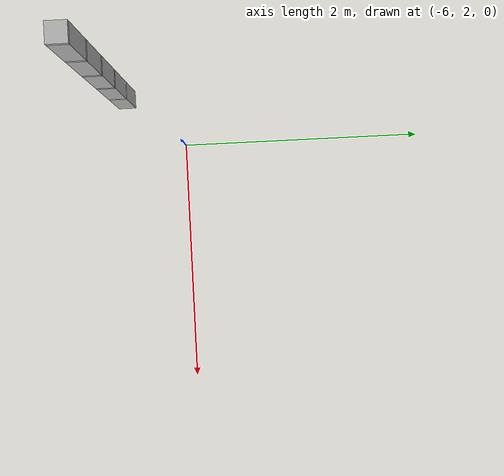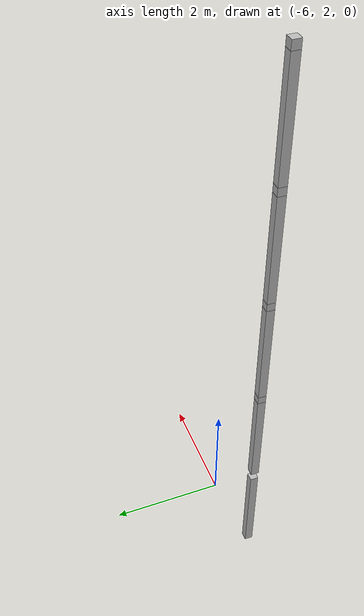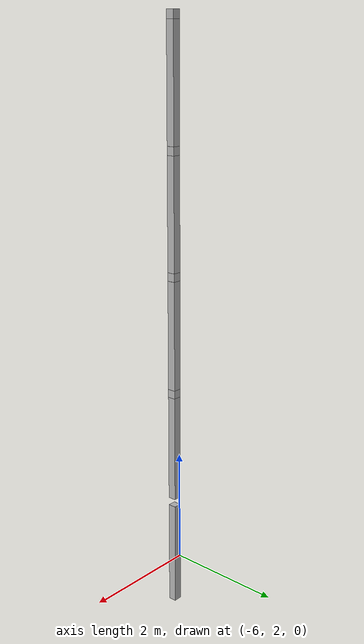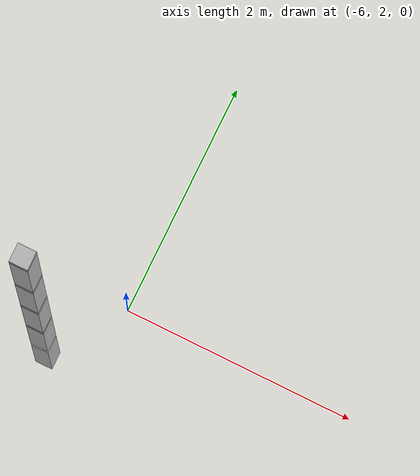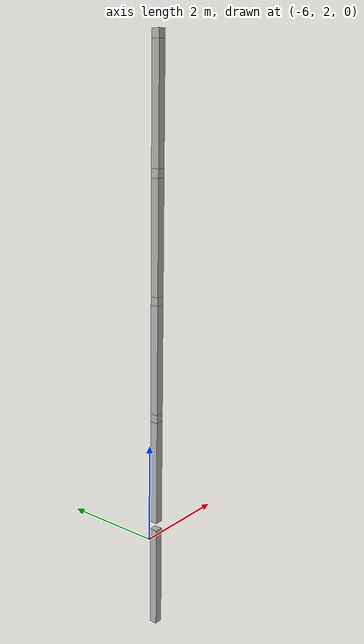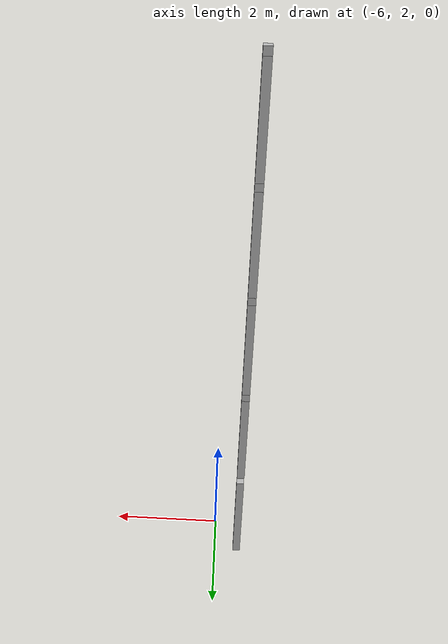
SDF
<sdf version="1.7">
 <world name="default">
  <model name="orthogonal_747_2.000.15_TS">
   <static>1</static>
   <link name="z_link_1_3_0">
    <inertial>
     <mass>1</mass>
     <inertia>
      <ixx>0.166667</ixx>
      <ixy>0</ixy>
      <ixz>0</ixz>
      <iyy>0.166667</iyy>
      <iyz>0</iyz>
      <izz>0.166667</izz>
     </inertia>
    </inertial>
    <pose>0 6.45 2.15 0 -0 0</pose>
    <visual name="visual_0">
     <laser_retro>1338</laser_retro>
     <geometry><box><size>0.15 1e-06 2</size></box></geometry>
     <material>
      <script><name>Gazebo/Grey</name><uri>file://media/materials/scripts/gazebo.material</uri></script>
      <shader type="pixel"><normal_map>__default__</normal_map></shader>
      <ambient>0.678 0.498 0.659 1</ambient>
      <diffuse>0.7 0.7 0.7 1</diffuse>
      <specular>0.01 0.01 0.01 1</specular>
      <emissive>0 0 0 1</emissive>
     </material>
     <pose>0 -0.075 0 0 -0 0</pose>
     <transparency>1</transparency>
    </visual>
    <visual name="visual_1">
     <laser_retro>1339</laser_retro>
     <geometry><box><size>0.15 1e-06 2</size></box></geometry>
     <material>
      <script><name>Gazebo/Grey</name><uri>file://media/materials/scripts/gazebo.material</uri></script>
      <shader type="pixel"><normal_map>__default__</normal_map></shader>
      <ambient>0.447 0.624 0.812 1</ambient>
      <diffuse>0.7 0.7 0.7 1</diffuse>
      <specular>0.01 0.01 0.01 1</specular>
      <emissive>0 0 0 1</emissive>
     </material>
     <pose>0 0.075 0 0 -0 0</pose>
     <transparency>1</transparency>
    </visual>
    <visual name="visual_2">
     <laser_retro>1340</laser_retro>
     <geometry><box><size>0.15 0.15 1e-06</size></box></geometry>
     <material>
      <script><name>Gazebo/Grey</name><uri>file://media/materials/scripts/gazebo.material</uri></script>
      <shader type="pixel"><normal_map>__default__</normal_map></shader>
      <ambient>0.988 0.686 0.243 1</ambient>
      <diffuse>0.7 0.7 0.7 1</diffuse>
      <specular>0.01 0.01 0.01 1</specular>
      <emissive>0 0 0 1</emissive>
     </material>
     <pose>0 0 -1 0 -0 0</pose>
     <transparency>1</transparency>
    </visual>
    <visual name="visual_3">
     <laser_retro>1341</laser_retro>
     <geometry><box><size>1e-06 0.15 2</size></box></geometry>
     <material>
      <script><name>Gazebo/Grey</name><uri>file://media/materials/scripts/gazebo.material</uri></script>
      <shader type="pixel"><normal_map>__default__</normal_map></shader>
      <ambient>0.988 0.914 0.31 1</ambient>
      <diffuse>0.7 0.7 0.7 1</diffuse>
      <specular>0.01 0.01 0.01 1</specular>
      <emissive>0 0 0 1</emissive>
     </material>
     <pose>0.075 0 0 0 -0 0</pose>
     <transparency>1</transparency>
    </visual>
    <visual name="visual_4">
     <laser_retro>1342</laser_retro>
     <geometry><box><size>0.15 0.15 1e-06</size></box></geometry>
     <material>
      <script><name>Gazebo/Grey</name><uri>file://media/materials/scripts/gazebo.material</uri></script>
      <shader type="pixel"><normal_map>__default__</normal_map></shader>
      <ambient>0.937 0.161 0.161 1</ambient>
      <diffuse>0.7 0.7 0.7 1</diffuse>
      <specular>0.01 0.01 0.01 1</specular>
      <emissive>0 0 0 1</emissive>
     </material>
     <pose>0 0 1 0 -0 0</pose>
     <transparency>1</transparency>
    </visual>
    <visual name="visual_5">
     <laser_retro>1343</laser_retro>
     <geometry><box><size>1e-06 0.15 2</size></box></geometry>
     <material>
      <script><name>Gazebo/Grey</name><uri>file://media/materials/scripts/gazebo.material</uri></script>
      <shader type="pixel"><normal_map>__default__</normal_map></shader>
      <ambient>0.541 0.886 0.204 1</ambient>
      <diffuse>0.7 0.7 0.7 1</diffuse>
      <specular>0.01 0.01 0.01 1</specular>
      <emissive>0 0 0 1</emissive>
     </material>
     <pose>-0.075 0 0 0 -0 0</pose>
     <transparency>1</transparency>
    </visual>
    <visual name="visual_texture">
     <geometry><box><size>0.149985 0.149985 1.9998</size></box></geometry>
     <material>
      <script>
       <uri>model://BASE_MODELS/simple_block_v2_textured/materials/scripts</uri>
       <uri>model://BASE_MODELS/simple_block_v2_textured/materials/textures</uri>
       <name>metal</name>
      </script>
     </material>
     <laser_retro>1344</laser_retro>
    </visual>
    <collision name="collision">
     <geometry><box><size>0.15 0.15 2</size></box></geometry>
     <surface>
      <friction>
       <ode><mu>1</mu><mu2>1</mu2><fdir1>0 0 0</fdir1><slip1>0</slip1><slip2>0</slip2></ode>
       <torsional>
        <coefficient>1</coefficient>
        <patch_radius>0</patch_radius>
        <surface_radius>0</surface_radius>
        <use_patch_radius>1</use_patch_radius>
        <ode><slip>0</slip></ode>
       </torsional>
      </friction>
      <bounce><restitution_coefficient>0</restitution_coefficient><threshold>1e+06</threshold></bounce>
      <contact>
       <collide_without_contact>0</collide_without_contact>
       <collide_without_contact_bitmask>1</collide_without_contact_bitmask>
       <collide_bitmask>1</collide_bitmask>
       <ode>
        <soft_cfm>0</soft_cfm>
        <soft_erp>0.2</soft_erp>
        <kp>1e+13</kp>
        <kd>1</kd>
        <max_vel>0.01</max_vel>
        <min_depth>0</min_depth>
       </ode>
       <bullet>
        <split_impulse>1</split_impulse>
        <split_impulse_penetration_threshold>-0.01</split_impulse_penetration_threshold>
        <soft_cfm>0</soft_cfm>
        <soft_erp>0.2</soft_erp>
        <kp>1e+13</kp>
        <kd>1</kd>
       </bullet>
      </contact>
     </surface>
    </collision>
   </link>
   <link name="u_link_2_3_0">
    <inertial>
     <mass>1</mass>
     <inertia>
      <ixx>0.166667</ixx>
      <ixy>0</ixy>
      <ixz>0</ixz>
      <iyy>0.166667</iyy>
      <iyz>0</iyz>
      <izz>0.166667</izz>
     </inertia>
    </inertial>
    <pose>0 6.45 5.375 0 -0 0</pose>
    <visual name="visual_0">
     <laser_retro>2234</laser_retro>
     <geometry><box><size>0.15 1e-06 0.15</size></box></geometry>
     <material>
      <script><name>Gazebo/Grey</name><uri>file://media/materials/scripts/gazebo.material</uri></script>
      <shader type="pixel"><normal_map>__default__</normal_map></shader>
      <ambient>0.678 0.498 0.659 1</ambient>
      <diffuse>0.7 0.7 0.7 1</diffuse>
      <specular>0.01 0.01 0.01 1</specular>
      <emissive>0 0 0 1</emissive>
     </material>
     <pose>0 -0.075 0 0 -0 0</pose>
     <transparency>1</transparency>
    </visual>
    <visual name="visual_1">
     <laser_retro>2235</laser_retro>
     <geometry><box><size>0.15 1e-06 0.15</size></box></geometry>
     <material>
      <script><name>Gazebo/Grey</name><uri>file://media/materials/scripts/gazebo.material</uri></script>
      <shader type="pixel"><normal_map>__default__</normal_map></shader>
      <ambient>0.447 0.624 0.812 1</ambient>
      <diffuse>0.7 0.7 0.7 1</diffuse>
      <specular>0.01 0.01 0.01 1</specular>
      <emissive>0 0 0 1</emissive>
     </material>
     <pose>0 0.075 0 0 -0 0</pose>
     <transparency>1</transparency>
    </visual>
    <visual name="visual_2">
     <laser_retro>2236</laser_retro>
     <geometry><box><size>0.15 0.15 1e-06</size></box></geometry>
     <material>
      <script><name>Gazebo/Grey</name><uri>file://media/materials/scripts/gazebo.material</uri></script>
      <shader type="pixel"><normal_map>__default__</normal_map></shader>
      <ambient>0.988 0.686 0.243 1</ambient>
      <diffuse>0.7 0.7 0.7 1</diffuse>
      <specular>0.01 0.01 0.01 1</specular>
      <emissive>0 0 0 1</emissive>
     </material>
     <pose>0 0 -0.075 0 -0 0</pose>
     <transparency>1</transparency>
    </visual>
    <visual name="visual_3">
     <laser_retro>2237</laser_retro>
     <geometry><box><size>1e-06 0.15 0.15</size></box></geometry>
     <material>
      <script><name>Gazebo/Grey</name><uri>file://media/materials/scripts/gazebo.material</uri></script>
      <shader type="pixel"><normal_map>__default__</normal_map></shader>
      <ambient>0.988 0.914 0.31 1</ambient>
      <diffuse>0.7 0.7 0.7 1</diffuse>
      <specular>0.01 0.01 0.01 1</specular>
      <emissive>0 0 0 1</emissive>
     </material>
     <pose>0.075 0 0 0 -0 0</pose>
     <transparency>1</transparency>
    </visual>
    <visual name="visual_4">
     <laser_retro>2238</laser_retro>
     <geometry><box><size>0.15 0.15 1e-06</size></box></geometry>
     <material>
      <script><name>Gazebo/Grey</name><uri>file://media/materials/scripts/gazebo.material</uri></script>
      <shader type="pixel"><normal_map>__default__</normal_map></shader>
      <ambient>0.937 0.161 0.161 1</ambient>
      <diffuse>0.7 0.7 0.7 1</diffuse>
      <specular>0.01 0.01 0.01 1</specular>
      <emissive>0 0 0 1</emissive>
     </material>
     <pose>0 0 0.075 0 -0 0</pose>
     <transparency>1</transparency>
    </visual>
    <visual name="visual_5">
     <laser_retro>2239</laser_retro>
     <geometry><box><size>1e-06 0.15 0.15</size></box></geometry>
     <material>
      <script><name>Gazebo/Grey</name><uri>file://media/materials/scripts/gazebo.material</uri></script>
      <shader type="pixel"><normal_map>__default__</normal_map></shader>
      <ambient>0.541 0.886 0.204 1</ambient>
      <diffuse>0.7 0.7 0.7 1</diffuse>
      <specular>0.01 0.01 0.01 1</specular>
      <emissive>0 0 0 1</emissive>
     </material>
     <pose>-0.075 0 0 0 -0 0</pose>
     <transparency>1</transparency>
    </visual>
    <visual name="visual_texture">
     <geometry><box><size>0.149985 0.149985 0.149985</size></box></geometry>
     <material>
      <script>
       <uri>model://BASE_MODELS/simple_block_v2_textured/materials/scripts</uri>
       <uri>model://BASE_MODELS/simple_block_v2_textured/materials/textures</uri>
       <name>metal</name>
      </script>
     </material>
     <laser_retro>2240</laser_retro>
    </visual>
    <collision name="collision">
     <geometry><box><size>0.15 0.15 0.15</size></box></geometry>
     <surface>
      <friction>
       <ode><mu>1</mu><mu2>1</mu2><fdir1>0 0 0</fdir1><slip1>0</slip1><slip2>0</slip2></ode>
       <torsional>
        <coefficient>1</coefficient>
        <patch_radius>0</patch_radius>
        <surface_radius>0</surface_radius>
        <use_patch_radius>1</use_patch_radius>
        <ode><slip>0</slip></ode>
       </torsional>
      </friction>
      <bounce><restitution_coefficient>0</restitution_coefficient><threshold>1e+06</threshold></bounce>
      <contact>
       <collide_without_contact>0</collide_without_contact>
       <collide_without_contact_bitmask>1</collide_without_contact_bitmask>
       <collide_bitmask>1</collide_bitmask>
       <ode>
        <soft_cfm>0</soft_cfm>
        <soft_erp>0.2</soft_erp>
        <kp>1e+13</kp>
        <kd>1</kd>
        <max_vel>0.01</max_vel>
        <min_depth>0</min_depth>
       </ode>
       <bullet>
        <split_impulse>1</split_impulse>
        <split_impulse_penetration_threshold>-0.01</split_impulse_penetration_threshold>
        <soft_cfm>0</soft_cfm>
        <soft_erp>0.2</soft_erp>
        <kp>1e+13</kp>
        <kd>1</kd>
       </bullet>
      </contact>
     </surface>
    </collision>
   </link>
   <link name="z_link_2_3_0">
    <inertial>
     <mass>1</mass>
     <inertia>
      <ixx>0.166667</ixx>
      <ixy>0</ixy>
      <ixz>0</ixz>
      <iyy>0.166667</iyy>
      <iyz>0</iyz>
      <izz>0.166667</izz>
     </inertia>
    </inertial>
    <pose>0 6.45 4.3 0 -0 0</pose>
    <visual name="visual_0">
     <laser_retro>2241</laser_retro>
     <geometry><box><size>0.15 1e-06 2</size></box></geometry>
     <material>
      <script><name>Gazebo/Grey</name><uri>file://media/materials/scripts/gazebo.material</uri></script>
      <shader type="pixel"><normal_map>__default__</normal_map></shader>
      <ambient>0.678 0.498 0.659 1</ambient>
      <diffuse>0.7 0.7 0.7 1</diffuse>
      <specular>0.01 0.01 0.01 1</specular>
      <emissive>0 0 0 1</emissive>
     </material>
     <pose>0 -0.075 0 0 -0 0</pose>
     <transparency>1</transparency>
    </visual>
    <visual name="visual_1">
     <laser_retro>2242</laser_retro>
     <geometry><box><size>0.15 1e-06 2</size></box></geometry>
     <material>
      <script><name>Gazebo/Grey</name><uri>file://media/materials/scripts/gazebo.material</uri></script>
      <shader type="pixel"><normal_map>__default__</normal_map></shader>
      <ambient>0.447 0.624 0.812 1</ambient>
      <diffuse>0.7 0.7 0.7 1</diffuse>
      <specular>0.01 0.01 0.01 1</specular>
      <emissive>0 0 0 1</emissive>
     </material>
     <pose>0 0.075 0 0 -0 0</pose>
     <transparency>1</transparency>
    </visual>
    <visual name="visual_2">
     <laser_retro>2243</laser_retro>
     <geometry><box><size>0.15 0.15 1e-06</size></box></geometry>
     <material>
      <script><name>Gazebo/Grey</name><uri>file://media/materials/scripts/gazebo.material</uri></script>
      <shader type="pixel"><normal_map>__default__</normal_map></shader>
      <ambient>0.988 0.686 0.243 1</ambient>
      <diffuse>0.7 0.7 0.7 1</diffuse>
      <specular>0.01 0.01 0.01 1</specular>
      <emissive>0 0 0 1</emissive>
     </material>
     <pose>0 0 -1 0 -0 0</pose>
     <transparency>1</transparency>
    </visual>
    <visual name="visual_3">
     <laser_retro>2244</laser_retro>
     <geometry><box><size>1e-06 0.15 2</size></box></geometry>
     <material>
      <script><name>Gazebo/Grey</name><uri>file://media/materials/scripts/gazebo.material</uri></script>
      <shader type="pixel"><normal_map>__default__</normal_map></shader>
      <ambient>0.988 0.914 0.31 1</ambient>
      <diffuse>0.7 0.7 0.7 1</diffuse>
      <specular>0.01 0.01 0.01 1</specular>
      <emissive>0 0 0 1</emissive>
     </material>
     <pose>0.075 0 0 0 -0 0</pose>
     <transparency>1</transparency>
    </visual>
    <visual name="visual_4">
     <laser_retro>2245</laser_retro>
     <geometry><box><size>0.15 0.15 1e-06</size></box></geometry>
     <material>
      <script><name>Gazebo/Grey</name><uri>file://media/materials/scripts/gazebo.material</uri></script>
      <shader type="pixel"><normal_map>__default__</normal_map></shader>
      <ambient>0.937 0.161 0.161 1</ambient>
      <diffuse>0.7 0.7 0.7 1</diffuse>
      <specular>0.01 0.01 0.01 1</specular>
      <emissive>0 0 0 1</emissive>
     </material>
     <pose>0 0 1 0 -0 0</pose>
     <transparency>1</transparency>
    </visual>
    <visual name="visual_5">
     <laser_retro>2246</laser_retro>
     <geometry><box><size>1e-06 0.15 2</size></box></geometry>
     <material>
      <script><name>Gazebo/Grey</name><uri>file://media/materials/scripts/gazebo.material</uri></script>
      <shader type="pixel"><normal_map>__default__</normal_map></shader>
      <ambient>0.541 0.886 0.204 1</ambient>
      <diffuse>0.7 0.7 0.7 1</diffuse>
      <specular>0.01 0.01 0.01 1</specular>
      <emissive>0 0 0 1</emissive>
     </material>
     <pose>-0.075 0 0 0 -0 0</pose>
     <transparency>1</transparency>
    </visual>
    <visual name="visual_texture">
     <geometry><box><size>0.149985 0.149985 1.9998</size></box></geometry>
     <material>
      <script>
       <uri>model://BASE_MODELS/simple_block_v2_textured/materials/scripts</uri>
       <uri>model://BASE_MODELS/simple_block_v2_textured/materials/textures</uri>
       <name>metal</name>
      </script>
     </material>
     <laser_retro>2247</laser_retro>
    </visual>
    <collision name="collision">
     <geometry><box><size>0.15 0.15 2</size></box></geometry>
     <surface>
      <friction>
       <ode><mu>1</mu><mu2>1</mu2><fdir1>0 0 0</fdir1><slip1>0</slip1><slip2>0</slip2></ode>
       <torsional>
        <coefficient>1</coefficient>
        <patch_radius>0</patch_radius>
        <surface_radius>0</surface_radius>
        <use_patch_radius>1</use_patch_radius>
        <ode><slip>0</slip></ode>
       </torsional>
      </friction>
      <bounce><restitution_coefficient>0</restitution_coefficient><threshold>1e+06</threshold></bounce>
      <contact>
       <collide_without_contact>0</collide_without_contact>
       <collide_without_contact_bitmask>1</collide_without_contact_bitmask>
       <collide_bitmask>1</collide_bitmask>
       <ode>
        <soft_cfm>0</soft_cfm>
        <soft_erp>0.2</soft_erp>
        <kp>1e+13</kp>
        <kd>1</kd>
        <max_vel>0.01</max_vel>
        <min_depth>0</min_depth>
       </ode>
       <bullet>
        <split_impulse>1</split_impulse>
        <split_impulse_penetration_threshold>-0.01</split_impulse_penetration_threshold>
        <soft_cfm>0</soft_cfm>
        <soft_erp>0.2</soft_erp>
        <kp>1e+13</kp>
        <kd>1</kd>
       </bullet>
      </contact>
     </surface>
    </collision>
   </link>
   <link name="u_link_3_3_0">
    <inertial>
     <mass>1</mass>
     <inertia>
      <ixx>0.166667</ixx>
      <ixy>0</ixy>
      <ixz>0</ixz>
      <iyy>0.166667</iyy>
      <iyz>0</iyz>
      <izz>0.166667</izz>
     </inertia>
    </inertial>
    <pose>0 6.45 7.525 0 -0 0</pose>
    <visual name="visual_0">
     <laser_retro>3137</laser_retro>
     <geometry><box><size>0.15 1e-06 0.15</size></box></geometry>
     <material>
      <script><name>Gazebo/Grey</name><uri>file://media/materials/scripts/gazebo.material</uri></script>
      <shader type="pixel"><normal_map>__default__</normal_map></shader>
      <ambient>0.678 0.498 0.659 1</ambient>
      <diffuse>0.7 0.7 0.7 1</diffuse>
      <specular>0.01 0.01 0.01 1</specular>
      <emissive>0 0 0 1</emissive>
     </material>
     <pose>0 -0.075 0 0 -0 0</pose>
     <transparency>1</transparency>
    </visual>
    <visual name="visual_1">
     <laser_retro>3138</laser_retro>
     <geometry><box><size>0.15 1e-06 0.15</size></box></geometry>
     <material>
      <script><name>Gazebo/Grey</name><uri>file://media/materials/scripts/gazebo.material</uri></script>
      <shader type="pixel"><normal_map>__default__</normal_map></shader>
      <ambient>0.447 0.624 0.812 1</ambient>
      <diffuse>0.7 0.7 0.7 1</diffuse>
      <specular>0.01 0.01 0.01 1</specular>
      <emissive>0 0 0 1</emissive>
     </material>
     <pose>0 0.075 0 0 -0 0</pose>
     <transparency>1</transparency>
    </visual>
    <visual name="visual_2">
     <laser_retro>3139</laser_retro>
     <geometry><box><size>0.15 0.15 1e-06</size></box></geometry>
     <material>
      <script><name>Gazebo/Grey</name><uri>file://media/materials/scripts/gazebo.material</uri></script>
      <shader type="pixel"><normal_map>__default__</normal_map></shader>
      <ambient>0.988 0.686 0.243 1</ambient>
      <diffuse>0.7 0.7 0.7 1</diffuse>
      <specular>0.01 0.01 0.01 1</specular>
      <emissive>0 0 0 1</emissive>
     </material>
     <pose>0 0 -0.075 0 -0 0</pose>
     <transparency>1</transparency>
    </visual>
    <visual name="visual_3">
     <laser_retro>3140</laser_retro>
     <geometry><box><size>1e-06 0.15 0.15</size></box></geometry>
     <material>
      <script><name>Gazebo/Grey</name><uri>file://media/materials/scripts/gazebo.material</uri></script>
      <shader type="pixel"><normal_map>__default__</normal_map></shader>
      <ambient>0.988 0.914 0.31 1</ambient>
      <diffuse>0.7 0.7 0.7 1</diffuse>
      <specular>0.01 0.01 0.01 1</specular>
      <emissive>0 0 0 1</emissive>
     </material>
     <pose>0.075 0 0 0 -0 0</pose>
     <transparency>1</transparency>
    </visual>
    <visual name="visual_4">
     <laser_retro>3141</laser_retro>
     <geometry><box><size>0.15 0.15 1e-06</size></box></geometry>
     <material>
      <script><name>Gazebo/Grey</name><uri>file://media/materials/scripts/gazebo.material</uri></script>
      <shader type="pixel"><normal_map>__default__</normal_map></shader>
      <ambient>0.937 0.161 0.161 1</ambient>
      <diffuse>0.7 0.7 0.7 1</diffuse>
      <specular>0.01 0.01 0.01 1</specular>
      <emissive>0 0 0 1</emissive>
     </material>
     <pose>0 0 0.075 0 -0 0</pose>
     <transparency>1</transparency>
    </visual>
    <visual name="visual_5">
     <laser_retro>3142</laser_retro>
     <geometry><box><size>1e-06 0.15 0.15</size></box></geometry>
     <material>
      <script><name>Gazebo/Grey</name><uri>file://media/materials/scripts/gazebo.material</uri></script>
      <shader type="pixel"><normal_map>__default__</normal_map></shader>
      <ambient>0.541 0.886 0.204 1</ambient>
      <diffuse>0.7 0.7 0.7 1</diffuse>
      <specular>0.01 0.01 0.01 1</specular>
      <emissive>0 0 0 1</emissive>
     </material>
     <pose>-0.075 0 0 0 -0 0</pose>
     <transparency>1</transparency>
    </visual>
    <visual name="visual_texture">
     <geometry><box><size>0.149985 0.149985 0.149985</size></box></geometry>
     <material>
      <script>
       <uri>model://BASE_MODELS/simple_block_v2_textured/materials/scripts</uri>
       <uri>model://BASE_MODELS/simple_block_v2_textured/materials/textures</uri>
       <name>metal</name>
      </script>
     </material>
     <laser_retro>3143</laser_retro>
    </visual>
    <collision name="collision">
     <geometry><box><size>0.15 0.15 0.15</size></box></geometry>
     <surface>
      <friction>
       <ode><mu>1</mu><mu2>1</mu2><fdir1>0 0 0</fdir1><slip1>0</slip1><slip2>0</slip2></ode>
       <torsional>
        <coefficient>1</coefficient>
        <patch_radius>0</patch_radius>
        <surface_radius>0</surface_radius>
        <use_patch_radius>1</use_patch_radius>
        <ode><slip>0</slip></ode>
       </torsional>
      </friction>
      <bounce><restitution_coefficient>0</restitution_coefficient><threshold>1e+06</threshold></bounce>
      <contact>
       <collide_without_contact>0</collide_without_contact>
       <collide_without_contact_bitmask>1</collide_without_contact_bitmask>
       <collide_bitmask>1</collide_bitmask>
       <ode>
        <soft_cfm>0</soft_cfm>
        <soft_erp>0.2</soft_erp>
        <kp>1e+13</kp>
        <kd>1</kd>
        <max_vel>0.01</max_vel>
        <min_depth>0</min_depth>
       </ode>
       <bullet>
        <split_impulse>1</split_impulse>
        <split_impulse_penetration_threshold>-0.01</split_impulse_penetration_threshold>
        <soft_cfm>0</soft_cfm>
        <soft_erp>0.2</soft_erp>
        <kp>1e+13</kp>
        <kd>1</kd>
       </bullet>
      </contact>
     </surface>
    </collision>
   </link>
   <link name="z_link_3_3_0">
    <inertial>
     <mass>1</mass>
     <inertia>
      <ixx>0.166667</ixx>
      <ixy>0</ixy>
      <ixz>0</ixz>
      <iyy>0.166667</iyy>
      <iyz>0</iyz>
      <izz>0.166667</izz>
     </inertia>
    </inertial>
    <pose>0 6.45 6.45 0 -0 0</pose>
    <visual name="visual_0">
     <laser_retro>3144</laser_retro>
     <geometry><box><size>0.15 1e-06 2</size></box></geometry>
     <material>
      <script><name>Gazebo/Grey</name><uri>file://media/materials/scripts/gazebo.material</uri></script>
      <shader type="pixel"><normal_map>__default__</normal_map></shader>
      <ambient>0.678 0.498 0.659 1</ambient>
      <diffuse>0.7 0.7 0.7 1</diffuse>
      <specular>0.01 0.01 0.01 1</specular>
      <emissive>0 0 0 1</emissive>
     </material>
     <pose>0 -0.075 0 0 -0 0</pose>
     <transparency>1</transparency>
    </visual>
    <visual name="visual_1">
     <laser_retro>3145</laser_retro>
     <geometry><box><size>0.15 1e-06 2</size></box></geometry>
     <material>
      <script><name>Gazebo/Grey</name><uri>file://media/materials/scripts/gazebo.material</uri></script>
      <shader type="pixel"><normal_map>__default__</normal_map></shader>
      <ambient>0.447 0.624 0.812 1</ambient>
      <diffuse>0.7 0.7 0.7 1</diffuse>
      <specular>0.01 0.01 0.01 1</specular>
      <emissive>0 0 0 1</emissive>
     </material>
     <pose>0 0.075 0 0 -0 0</pose>
     <transparency>1</transparency>
    </visual>
    <visual name="visual_2">
     <laser_retro>3146</laser_retro>
     <geometry><box><size>0.15 0.15 1e-06</size></box></geometry>
     <material>
      <script><name>Gazebo/Grey</name><uri>file://media/materials/scripts/gazebo.material</uri></script>
      <shader type="pixel"><normal_map>__default__</normal_map></shader>
      <ambient>0.988 0.686 0.243 1</ambient>
      <diffuse>0.7 0.7 0.7 1</diffuse>
      <specular>0.01 0.01 0.01 1</specular>
      <emissive>0 0 0 1</emissive>
     </material>
     <pose>0 0 -1 0 -0 0</pose>
     <transparency>1</transparency>
    </visual>
    <visual name="visual_3">
     <laser_retro>3147</laser_retro>
     <geometry><box><size>1e-06 0.15 2</size></box></geometry>
     <material>
      <script><name>Gazebo/Grey</name><uri>file://media/materials/scripts/gazebo.material</uri></script>
      <shader type="pixel"><normal_map>__default__</normal_map></shader>
      <ambient>0.988 0.914 0.31 1</ambient>
      <diffuse>0.7 0.7 0.7 1</diffuse>
      <specular>0.01 0.01 0.01 1</specular>
      <emissive>0 0 0 1</emissive>
     </material>
     <pose>0.075 0 0 0 -0 0</pose>
     <transparency>1</transparency>
    </visual>
    <visual name="visual_4">
     <laser_retro>3148</laser_retro>
     <geometry><box><size>0.15 0.15 1e-06</size></box></geometry>
     <material>
      <script><name>Gazebo/Grey</name><uri>file://media/materials/scripts/gazebo.material</uri></script>
      <shader type="pixel"><normal_map>__default__</normal_map></shader>
      <ambient>0.937 0.161 0.161 1</ambient>
      <diffuse>0.7 0.7 0.7 1</diffuse>
      <specular>0.01 0.01 0.01 1</specular>
      <emissive>0 0 0 1</emissive>
     </material>
     <pose>0 0 1 0 -0 0</pose>
     <transparency>1</transparency>
    </visual>
    <visual name="visual_5">
     <laser_retro>3149</laser_retro>
     <geometry><box><size>1e-06 0.15 2</size></box></geometry>
     <material>
      <script><name>Gazebo/Grey</name><uri>file://media/materials/scripts/gazebo.material</uri></script>
      <shader type="pixel"><normal_map>__default__</normal_map></shader>
      <ambient>0.541 0.886 0.204 1</ambient>
      <diffuse>0.7 0.7 0.7 1</diffuse>
      <specular>0.01 0.01 0.01 1</specular>
      <emissive>0 0 0 1</emissive>
     </material>
     <pose>-0.075 0 0 0 -0 0</pose>
     <transparency>1</transparency>
    </visual>
    <visual name="visual_texture">
     <geometry><box><size>0.149985 0.149985 1.9998</size></box></geometry>
     <material>
      <script>
       <uri>model://BASE_MODELS/simple_block_v2_textured/materials/scripts</uri>
       <uri>model://BASE_MODELS/simple_block_v2_textured/materials/textures</uri>
       <name>metal</name>
      </script>
     </material>
     <laser_retro>3150</laser_retro>
    </visual>
    <collision name="collision">
     <geometry><box><size>0.15 0.15 2</size></box></geometry>
     <surface>
      <friction>
       <ode><mu>1</mu><mu2>1</mu2><fdir1>0 0 0</fdir1><slip1>0</slip1><slip2>0</slip2></ode>
       <torsional>
        <coefficient>1</coefficient>
        <patch_radius>0</patch_radius>
        <surface_radius>0</surface_radius>
        <use_patch_radius>1</use_patch_radius>
        <ode><slip>0</slip></ode>
       </torsional>
      </friction>
      <bounce><restitution_coefficient>0</restitution_coefficient><threshold>1e+06</threshold></bounce>
      <contact>
       <collide_without_contact>0</collide_without_contact>
       <collide_without_contact_bitmask>1</collide_without_contact_bitmask>
       <collide_bitmask>1</collide_bitmask>
       <ode>
        <soft_cfm>0</soft_cfm>
        <soft_erp>0.2</soft_erp>
        <kp>1e+13</kp>
        <kd>1</kd>
        <max_vel>0.01</max_vel>
        <min_depth>0</min_depth>
       </ode>
       <bullet>
        <split_impulse>1</split_impulse>
        <split_impulse_penetration_threshold>-0.01</split_impulse_penetration_threshold>
        <soft_cfm>0</soft_cfm>
        <soft_erp>0.2</soft_erp>
        <kp>1e+13</kp>
        <kd>1</kd>
       </bullet>
      </contact>
     </surface>
    </collision>
   </link>
   <link name="u_link_4_3_0">
    <inertial>
     <mass>1</mass>
     <inertia>
      <ixx>0.166667</ixx>
      <ixy>0</ixy>
      <ixz>0</ixz>
      <iyy>0.166667</iyy>
      <iyz>0</iyz>
      <izz>0.166667</izz>
     </inertia>
    </inertial>
    <pose>0 6.45 9.675 0 -0 0</pose>
    <visual name="visual_0">
     <laser_retro>4040</laser_retro>
     <geometry><box><size>0.15 1e-06 0.15</size></box></geometry>
     <material>
      <script><name>Gazebo/Grey</name><uri>file://media/materials/scripts/gazebo.material</uri></script>
      <shader type="pixel"><normal_map>__default__</normal_map></shader>
      <ambient>0.678 0.498 0.659 1</ambient>
      <diffuse>0.7 0.7 0.7 1</diffuse>
      <specular>0.01 0.01 0.01 1</specular>
      <emissive>0 0 0 1</emissive>
     </material>
     <pose>0 -0.075 0 0 -0 0</pose>
     <transparency>1</transparency>
    </visual>
    <visual name="visual_1">
     <laser_retro>4041</laser_retro>
     <geometry><box><size>0.15 1e-06 0.15</size></box></geometry>
     <material>
      <script><name>Gazebo/Grey</name><uri>file://media/materials/scripts/gazebo.material</uri></script>
      <shader type="pixel"><normal_map>__default__</normal_map></shader>
      <ambient>0.447 0.624 0.812 1</ambient>
      <diffuse>0.7 0.7 0.7 1</diffuse>
      <specular>0.01 0.01 0.01 1</specular>
      <emissive>0 0 0 1</emissive>
     </material>
     <pose>0 0.075 0 0 -0 0</pose>
     <transparency>1</transparency>
    </visual>
    <visual name="visual_2">
     <laser_retro>4042</laser_retro>
     <geometry><box><size>0.15 0.15 1e-06</size></box></geometry>
     <material>
      <script><name>Gazebo/Grey</name><uri>file://media/materials/scripts/gazebo.material</uri></script>
      <shader type="pixel"><normal_map>__default__</normal_map></shader>
      <ambient>0.988 0.686 0.243 1</ambient>
      <diffuse>0.7 0.7 0.7 1</diffuse>
      <specular>0.01 0.01 0.01 1</specular>
      <emissive>0 0 0 1</emissive>
     </material>
     <pose>0 0 -0.075 0 -0 0</pose>
     <transparency>1</transparency>
    </visual>
    <visual name="visual_3">
     <laser_retro>4043</laser_retro>
     <geometry><box><size>1e-06 0.15 0.15</size></box></geometry>
     <material>
      <script><name>Gazebo/Grey</name><uri>file://media/materials/scripts/gazebo.material</uri></script>
      <shader type="pixel"><normal_map>__default__</normal_map></shader>
      <ambient>0.988 0.914 0.31 1</ambient>
      <diffuse>0.7 0.7 0.7 1</diffuse>
      <specular>0.01 0.01 0.01 1</specular>
      <emissive>0 0 0 1</emissive>
     </material>
     <pose>0.075 0 0 0 -0 0</pose>
     <transparency>1</transparency>
    </visual>
    <visual name="visual_4">
     <laser_retro>4044</laser_retro>
     <geometry><box><size>0.15 0.15 1e-06</size></box></geometry>
     <material>
      <script><name>Gazebo/Grey</name><uri>file://media/materials/scripts/gazebo.material</uri></script>
      <shader type="pixel"><normal_map>__default__</normal_map></shader>
      <ambient>0.937 0.161 0.161 1</ambient>
      <diffuse>0.7 0.7 0.7 1</diffuse>
      <specular>0.01 0.01 0.01 1</specular>
      <emissive>0 0 0 1</emissive>
     </material>
     <pose>0 0 0.075 0 -0 0</pose>
     <transparency>1</transparency>
    </visual>
    <visual name="visual_5">
     <laser_retro>4045</laser_retro>
     <geometry><box><size>1e-06 0.15 0.15</size></box></geometry>
     <material>
      <script><name>Gazebo/Grey</name><uri>file://media/materials/scripts/gazebo.material</uri></script>
      <shader type="pixel"><normal_map>__default__</normal_map></shader>
      <ambient>0.541 0.886 0.204 1</ambient>
      <diffuse>0.7 0.7 0.7 1</diffuse>
      <specular>0.01 0.01 0.01 1</specular>
      <emissive>0 0 0 1</emissive>
     </material>
     <pose>-0.075 0 0 0 -0 0</pose>
     <transparency>1</transparency>
    </visual>
    <visual name="visual_texture">
     <geometry><box><size>0.149985 0.149985 0.149985</size></box></geometry>
     <material>
      <script>
       <uri>model://BASE_MODELS/simple_block_v2_textured/materials/scripts</uri>
       <uri>model://BASE_MODELS/simple_block_v2_textured/materials/textures</uri>
       <name>metal</name>
      </script>
     </material>
     <laser_retro>4046</laser_retro>
    </visual>
    <collision name="collision">
     <geometry><box><size>0.15 0.15 0.15</size></box></geometry>
     <surface>
      <friction>
       <ode><mu>1</mu><mu2>1</mu2><fdir1>0 0 0</fdir1><slip1>0</slip1><slip2>0</slip2></ode>
       <torsional>
        <coefficient>1</coefficient>
        <patch_radius>0</patch_radius>
        <surface_radius>0</surface_radius>
        <use_patch_radius>1</use_patch_radius>
        <ode><slip>0</slip></ode>
       </torsional>
      </friction>
      <bounce><restitution_coefficient>0</restitution_coefficient><threshold>1e+06</threshold></bounce>
      <contact>
       <collide_without_contact>0</collide_without_contact>
       <collide_without_contact_bitmask>1</collide_without_contact_bitmask>
       <collide_bitmask>1</collide_bitmask>
       <ode>
        <soft_cfm>0</soft_cfm>
        <soft_erp>0.2</soft_erp>
        <kp>1e+13</kp>
        <kd>1</kd>
        <max_vel>0.01</max_vel>
        <min_depth>0</min_depth>
       </ode>
       <bullet>
        <split_impulse>1</split_impulse>
        <split_impulse_penetration_threshold>-0.01</split_impulse_penetration_threshold>
        <soft_cfm>0</soft_cfm>
        <soft_erp>0.2</soft_erp>
        <kp>1e+13</kp>
        <kd>1</kd>
       </bullet>
      </contact>
     </surface>
    </collision>
   </link>
   <link name="z_link_4_3_0">
    <inertial>
     <mass>1</mass>
     <inertia>
      <ixx>0.166667</ixx>
      <ixy>0</ixy>
      <ixz>0</ixz>
      <iyy>0.166667</iyy>
      <iyz>0</iyz>
      <izz>0.166667</izz>
     </inertia>
    </inertial>
    <pose>0 6.45 8.6 0 -0 0</pose>
    <visual name="visual_0">
     <laser_retro>4047</laser_retro>
     <geometry><box><size>0.15 1e-06 2</size></box></geometry>
     <material>
      <script><name>Gazebo/Grey</name><uri>file://media/materials/scripts/gazebo.material</uri></script>
      <shader type="pixel"><normal_map>__default__</normal_map></shader>
      <ambient>0.678 0.498 0.659 1</ambient>
      <diffuse>0.7 0.7 0.7 1</diffuse>
      <specular>0.01 0.01 0.01 1</specular>
      <emissive>0 0 0 1</emissive>
     </material>
     <pose>0 -0.075 0 0 -0 0</pose>
     <transparency>1</transparency>
    </visual>
    <visual name="visual_1">
     <laser_retro>4048</laser_retro>
     <geometry><box><size>0.15 1e-06 2</size></box></geometry>
     <material>
      <script><name>Gazebo/Grey</name><uri>file://media/materials/scripts/gazebo.material</uri></script>
      <shader type="pixel"><normal_map>__default__</normal_map></shader>
      <ambient>0.447 0.624 0.812 1</ambient>
      <diffuse>0.7 0.7 0.7 1</diffuse>
      <specular>0.01 0.01 0.01 1</specular>
      <emissive>0 0 0 1</emissive>
     </material>
     <pose>0 0.075 0 0 -0 0</pose>
     <transparency>1</transparency>
    </visual>
    <visual name="visual_2">
     <laser_retro>4049</laser_retro>
     <geometry><box><size>0.15 0.15 1e-06</size></box></geometry>
     <material>
      <script><name>Gazebo/Grey</name><uri>file://media/materials/scripts/gazebo.material</uri></script>
      <shader type="pixel"><normal_map>__default__</normal_map></shader>
      <ambient>0.988 0.686 0.243 1</ambient>
      <diffuse>0.7 0.7 0.7 1</diffuse>
      <specular>0.01 0.01 0.01 1</specular>
      <emissive>0 0 0 1</emissive>
     </material>
     <pose>0 0 -1 0 -0 0</pose>
     <transparency>1</transparency>
    </visual>
    <visual name="visual_3">
     <laser_retro>4050</laser_retro>
     <geometry><box><size>1e-06 0.15 2</size></box></geometry>
     <material>
      <script><name>Gazebo/Grey</name><uri>file://media/materials/scripts/gazebo.material</uri></script>
      <shader type="pixel"><normal_map>__default__</normal_map></shader>
      <ambient>0.988 0.914 0.31 1</ambient>
      <diffuse>0.7 0.7 0.7 1</diffuse>
      <specular>0.01 0.01 0.01 1</specular>
      <emissive>0 0 0 1</emissive>
     </material>
     <pose>0.075 0 0 0 -0 0</pose>
     <transparency>1</transparency>
    </visual>
    <visual name="visual_4">
     <laser_retro>4051</laser_retro>
     <geometry><box><size>0.15 0.15 1e-06</size></box></geometry>
     <material>
      <script><name>Gazebo/Grey</name><uri>file://media/materials/scripts/gazebo.material</uri></script>
      <shader type="pixel"><normal_map>__default__</normal_map></shader>
      <ambient>0.937 0.161 0.161 1</ambient>
      <diffuse>0.7 0.7 0.7 1</diffuse>
      <specular>0.01 0.01 0.01 1</specular>
      <emissive>0 0 0 1</emissive>
     </material>
     <pose>0 0 1 0 -0 0</pose>
     <transparency>1</transparency>
    </visual>
    <visual name="visual_5">
     <laser_retro>4052</laser_retro>
     <geometry><box><size>1e-06 0.15 2</size></box></geometry>
     <material>
      <script><name>Gazebo/Grey</name><uri>file://media/materials/scripts/gazebo.material</uri></script>
      <shader type="pixel"><normal_map>__default__</normal_map></shader>
      <ambient>0.541 0.886 0.204 1</ambient>
      <diffuse>0.7 0.7 0.7 1</diffuse>
      <specular>0.01 0.01 0.01 1</specular>
      <emissive>0 0 0 1</emissive>
     </material>
     <pose>-0.075 0 0 0 -0 0</pose>
     <transparency>1</transparency>
    </visual>
    <visual name="visual_texture">
     <geometry><box><size>0.149985 0.149985 1.9998</size></box></geometry>
     <material>
      <script>
       <uri>model://BASE_MODELS/simple_block_v2_textured/materials/scripts</uri>
       <uri>model://BASE_MODELS/simple_block_v2_textured/materials/textures</uri>
       <name>metal</name>
      </script>
     </material>
     <laser_retro>4053</laser_retro>
    </visual>
    <collision name="collision">
     <geometry><box><size>0.15 0.15 2</size></box></geometry>
     <surface>
      <friction>
       <ode><mu>1</mu><mu2>1</mu2><fdir1>0 0 0</fdir1><slip1>0</slip1><slip2>0</slip2></ode>
       <torsional>
        <coefficient>1</coefficient>
        <patch_radius>0</patch_radius>
        <surface_radius>0</surface_radius>
        <use_patch_radius>1</use_patch_radius>
        <ode><slip>0</slip></ode>
       </torsional>
      </friction>
      <bounce><restitution_coefficient>0</restitution_coefficient><threshold>1e+06</threshold></bounce>
      <contact>
       <collide_without_contact>0</collide_without_contact>
       <collide_without_contact_bitmask>1</collide_without_contact_bitmask>
       <collide_bitmask>1</collide_bitmask>
       <ode>
        <soft_cfm>0</soft_cfm>
        <soft_erp>0.2</soft_erp>
        <kp>1e+13</kp>
        <kd>1</kd>
        <max_vel>0.01</max_vel>
        <min_depth>0</min_depth>
       </ode>
       <bullet>
        <split_impulse>1</split_impulse>
        <split_impulse_penetration_threshold>-0.01</split_impulse_penetration_threshold>
        <soft_cfm>0</soft_cfm>
        <soft_erp>0.2</soft_erp>
        <kp>1e+13</kp>
        <kd>1</kd>
       </bullet>
      </contact>
     </surface>
    </collision>
   </link>
   <link name="u_link_5_3_0">
    <inertial>
     <mass>1</mass>
     <inertia>
      <ixx>0.166667</ixx>
      <ixy>0</ixy>
      <ixz>0</ixz>
      <iyy>0.166667</iyy>
      <iyz>0</iyz>
      <izz>0.166667</izz>
     </inertia>
    </inertial>
    <pose>0 6.45 11.825 0 -0 0</pose>
    <visual name="visual_0">
     <laser_retro>4943</laser_retro>
     <geometry><box><size>0.15 1e-06 0.15</size></box></geometry>
     <material>
      <script><name>Gazebo/Grey</name><uri>file://media/materials/scripts/gazebo.material</uri></script>
      <shader type="pixel"><normal_map>__default__</normal_map></shader>
      <ambient>0.678 0.498 0.659 1</ambient>
      <diffuse>0.7 0.7 0.7 1</diffuse>
      <specular>0.01 0.01 0.01 1</specular>
      <emissive>0 0 0 1</emissive>
     </material>
     <pose>0 -0.075 0 0 -0 0</pose>
     <transparency>1</transparency>
    </visual>
    <visual name="visual_1">
     <laser_retro>4944</laser_retro>
     <geometry><box><size>0.15 1e-06 0.15</size></box></geometry>
     <material>
      <script><name>Gazebo/Grey</name><uri>file://media/materials/scripts/gazebo.material</uri></script>
      <shader type="pixel"><normal_map>__default__</normal_map></shader>
      <ambient>0.447 0.624 0.812 1</ambient>
      <diffuse>0.7 0.7 0.7 1</diffuse>
      <specular>0.01 0.01 0.01 1</specular>
      <emissive>0 0 0 1</emissive>
     </material>
     <pose>0 0.075 0 0 -0 0</pose>
     <transparency>1</transparency>
    </visual>
    <visual name="visual_2">
     <laser_retro>4945</laser_retro>
     <geometry><box><size>0.15 0.15 1e-06</size></box></geometry>
     <material>
      <script><name>Gazebo/Grey</name><uri>file://media/materials/scripts/gazebo.material</uri></script>
      <shader type="pixel"><normal_map>__default__</normal_map></shader>
      <ambient>0.988 0.686 0.243 1</ambient>
      <diffuse>0.7 0.7 0.7 1</diffuse>
      <specular>0.01 0.01 0.01 1</specular>
      <emissive>0 0 0 1</emissive>
     </material>
     <pose>0 0 -0.075 0 -0 0</pose>
     <transparency>1</transparency>
    </visual>
    <visual name="visual_3">
     <laser_retro>4946</laser_retro>
     <geometry><box><size>1e-06 0.15 0.15</size></box></geometry>
     <material>
      <script><name>Gazebo/Grey</name><uri>file://media/materials/scripts/gazebo.material</uri></script>
      <shader type="pixel"><normal_map>__default__</normal_map></shader>
      <ambient>0.988 0.914 0.31 1</ambient>
      <diffuse>0.7 0.7 0.7 1</diffuse>
      <specular>0.01 0.01 0.01 1</specular>
      <emissive>0 0 0 1</emissive>
     </material>
     <pose>0.075 0 0 0 -0 0</pose>
     <transparency>1</transparency>
    </visual>
    <visual name="visual_4">
     <laser_retro>4947</laser_retro>
     <geometry><box><size>0.15 0.15 1e-06</size></box></geometry>
     <material>
      <script><name>Gazebo/Grey</name><uri>file://media/materials/scripts/gazebo.material</uri></script>
      <shader type="pixel"><normal_map>__default__</normal_map></shader>
      <ambient>0.937 0.161 0.161 1</ambient>
      <diffuse>0.7 0.7 0.7 1</diffuse>
      <specular>0.01 0.01 0.01 1</specular>
      <emissive>0 0 0 1</emissive>
     </material>
     <pose>0 0 0.075 0 -0 0</pose>
     <transparency>1</transparency>
    </visual>
    <visual name="visual_5">
     <laser_retro>4948</laser_retro>
     <geometry><box><size>1e-06 0.15 0.15</size></box></geometry>
     <material>
      <script><name>Gazebo/Grey</name><uri>file://media/materials/scripts/gazebo.material</uri></script>
      <shader type="pixel"><normal_map>__default__</normal_map></shader>
      <ambient>0.541 0.886 0.204 1</ambient>
      <diffuse>0.7 0.7 0.7 1</diffuse>
      <specular>0.01 0.01 0.01 1</specular>
      <emissive>0 0 0 1</emissive>
     </material>
     <pose>-0.075 0 0 0 -0 0</pose>
     <transparency>1</transparency>
    </visual>
    <visual name="visual_texture">
     <geometry><box><size>0.149985 0.149985 0.149985</size></box></geometry>
     <material>
      <script>
       <uri>model://BASE_MODELS/simple_block_v2_textured/materials/scripts</uri>
       <uri>model://BASE_MODELS/simple_block_v2_textured/materials/textures</uri>
       <name>metal</name>
      </script>
     </material>
     <laser_retro>4949</laser_retro>
    </visual>
    <collision name="collision">
     <geometry><box><size>0.15 0.15 0.15</size></box></geometry>
     <surface>
      <friction>
       <ode><mu>1</mu><mu2>1</mu2><fdir1>0 0 0</fdir1><slip1>0</slip1><slip2>0</slip2></ode>
       <torsional>
        <coefficient>1</coefficient>
        <patch_radius>0</patch_radius>
        <surface_radius>0</surface_radius>
        <use_patch_radius>1</use_patch_radius>
        <ode><slip>0</slip></ode>
       </torsional>
      </friction>
      <bounce><restitution_coefficient>0</restitution_coefficient><threshold>1e+06</threshold></bounce>
      <contact>
       <collide_without_contact>0</collide_without_contact>
       <collide_without_contact_bitmask>1</collide_without_contact_bitmask>
       <collide_bitmask>1</collide_bitmask>
       <ode>
        <soft_cfm>0</soft_cfm>
        <soft_erp>0.2</soft_erp>
        <kp>1e+13</kp>
        <kd>1</kd>
        <max_vel>0.01</max_vel>
        <min_depth>0</min_depth>
       </ode>
       <bullet>
        <split_impulse>1</split_impulse>
        <split_impulse_penetration_threshold>-0.01</split_impulse_penetration_threshold>
        <soft_cfm>0</soft_cfm>
        <soft_erp>0.2</soft_erp>
        <kp>1e+13</kp>
        <kd>1</kd>
       </bullet>
      </contact>
     </surface>
    </collision>
   </link>
   <link name="z_link_5_3_0">
    <inertial>
     <mass>1</mass>
     <inertia>
      <ixx>0.166667</ixx>
      <ixy>0</ixy>
      <ixz>0</ixz>
      <iyy>0.166667</iyy>
      <iyz>0</iyz>
      <izz>0.166667</izz>
     </inertia>
    </inertial>
    <pose>0 6.45 10.75 0 -0 0</pose>
    <visual name="visual_0">
     <laser_retro>4950</laser_retro>
     <geometry><box><size>0.15 1e-06 2</size></box></geometry>
     <material>
      <script><name>Gazebo/Grey</name><uri>file://media/materials/scripts/gazebo.material</uri></script>
      <shader type="pixel"><normal_map>__default__</normal_map></shader>
      <ambient>0.678 0.498 0.659 1</ambient>
      <diffuse>0.7 0.7 0.7 1</diffuse>
      <specular>0.01 0.01 0.01 1</specular>
      <emissive>0 0 0 1</emissive>
     </material>
     <pose>0 -0.075 0 0 -0 0</pose>
     <transparency>1</transparency>
    </visual>
    <visual name="visual_1">
     <laser_retro>4951</laser_retro>
     <geometry><box><size>0.15 1e-06 2</size></box></geometry>
     <material>
      <script><name>Gazebo/Grey</name><uri>file://media/materials/scripts/gazebo.material</uri></script>
      <shader type="pixel"><normal_map>__default__</normal_map></shader>
      <ambient>0.447 0.624 0.812 1</ambient>
      <diffuse>0.7 0.7 0.7 1</diffuse>
      <specular>0.01 0.01 0.01 1</specular>
      <emissive>0 0 0 1</emissive>
     </material>
     <pose>0 0.075 0 0 -0 0</pose>
     <transparency>1</transparency>
    </visual>
    <visual name="visual_2">
     <laser_retro>4952</laser_retro>
     <geometry><box><size>0.15 0.15 1e-06</size></box></geometry>
     <material>
      <script><name>Gazebo/Grey</name><uri>file://media/materials/scripts/gazebo.material</uri></script>
      <shader type="pixel"><normal_map>__default__</normal_map></shader>
      <ambient>0.988 0.686 0.243 1</ambient>
      <diffuse>0.7 0.7 0.7 1</diffuse>
      <specular>0.01 0.01 0.01 1</specular>
      <emissive>0 0 0 1</emissive>
     </material>
     <pose>0 0 -1 0 -0 0</pose>
     <transparency>1</transparency>
    </visual>
    <visual name="visual_3">
     <laser_retro>4953</laser_retro>
     <geometry><box><size>1e-06 0.15 2</size></box></geometry>
     <material>
      <script><name>Gazebo/Grey</name><uri>file://media/materials/scripts/gazebo.material</uri></script>
      <shader type="pixel"><normal_map>__default__</normal_map></shader>
      <ambient>0.988 0.914 0.31 1</ambient>
      <diffuse>0.7 0.7 0.7 1</diffuse>
      <specular>0.01 0.01 0.01 1</specular>
      <emissive>0 0 0 1</emissive>
     </material>
     <pose>0.075 0 0 0 -0 0</pose>
     <transparency>1</transparency>
    </visual>
    <visual name="visual_4">
     <laser_retro>4954</laser_retro>
     <geometry><box><size>0.15 0.15 1e-06</size></box></geometry>
     <material>
      <script><name>Gazebo/Grey</name><uri>file://media/materials/scripts/gazebo.material</uri></script>
      <shader type="pixel"><normal_map>__default__</normal_map></shader>
      <ambient>0.937 0.161 0.161 1</ambient>
      <diffuse>0.7 0.7 0.7 1</diffuse>
      <specular>0.01 0.01 0.01 1</specular>
      <emissive>0 0 0 1</emissive>
     </material>
     <pose>0 0 1 0 -0 0</pose>
     <transparency>1</transparency>
    </visual>
    <visual name="visual_5">
     <laser_retro>4955</laser_retro>
     <geometry><box><size>1e-06 0.15 2</size></box></geometry>
     <material>
      <script><name>Gazebo/Grey</name><uri>file://media/materials/scripts/gazebo.material</uri></script>
      <shader type="pixel"><normal_map>__default__</normal_map></shader>
      <ambient>0.541 0.886 0.204 1</ambient>
      <diffuse>0.7 0.7 0.7 1</diffuse>
      <specular>0.01 0.01 0.01 1</specular>
      <emissive>0 0 0 1</emissive>
     </material>
     <pose>-0.075 0 0 0 -0 0</pose>
     <transparency>1</transparency>
    </visual>
    <visual name="visual_texture">
     <geometry><box><size>0.149985 0.149985 1.9998</size></box></geometry>
     <material>
      <script>
       <uri>model://BASE_MODELS/simple_block_v2_textured/materials/scripts</uri>
       <uri>model://BASE_MODELS/simple_block_v2_textured/materials/textures</uri>
       <name>metal</name>
      </script>
     </material>
     <laser_retro>4956</laser_retro>
    </visual>
    <collision name="collision">
     <geometry><box><size>0.15 0.15 2</size></box></geometry>
     <surface>
      <friction>
       <ode><mu>1</mu><mu2>1</mu2><fdir1>0 0 0</fdir1><slip1>0</slip1><slip2>0</slip2></ode>
       <torsional>
        <coefficient>1</coefficient>
        <patch_radius>0</patch_radius>
        <surface_radius>0</surface_radius>
        <use_patch_radius>1</use_patch_radius>
        <ode><slip>0</slip></ode>
       </torsional>
      </friction>
      <bounce><restitution_coefficient>0</restitution_coefficient><threshold>1e+06</threshold></bounce>
      <contact>
       <collide_without_contact>0</collide_without_contact>
       <collide_without_contact_bitmask>1</collide_without_contact_bitmask>
       <collide_bitmask>1</collide_bitmask>
       <ode>
        <soft_cfm>0</soft_cfm>
        <soft_erp>0.2</soft_erp>
        <kp>1e+13</kp>
        <kd>1</kd>
        <max_vel>0.01</max_vel>
        <min_depth>0</min_depth>
       </ode>
       <bullet>
        <split_impulse>1</split_impulse>
        <split_impulse_penetration_threshold>-0.01</split_impulse_penetration_threshold>
        <soft_cfm>0</soft_cfm>
        <soft_erp>0.2</soft_erp>
        <kp>1e+13</kp>
        <kd>1</kd>
       </bullet>
      </contact>
     </surface>
    </collision>
   </link>
   <pose>-6.47624 -5 -2.5 0 -0 0</pose>
  </model>
 </world>
</sdf>
